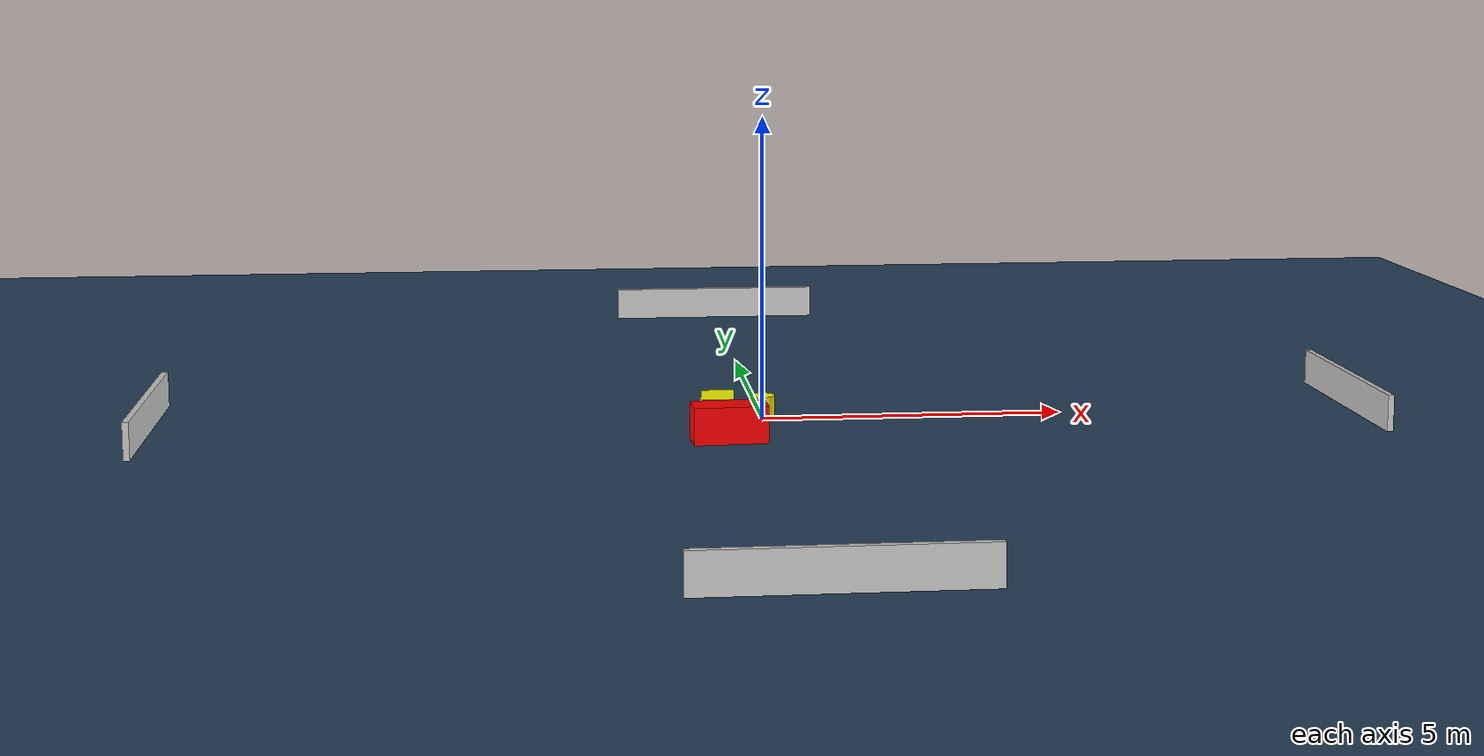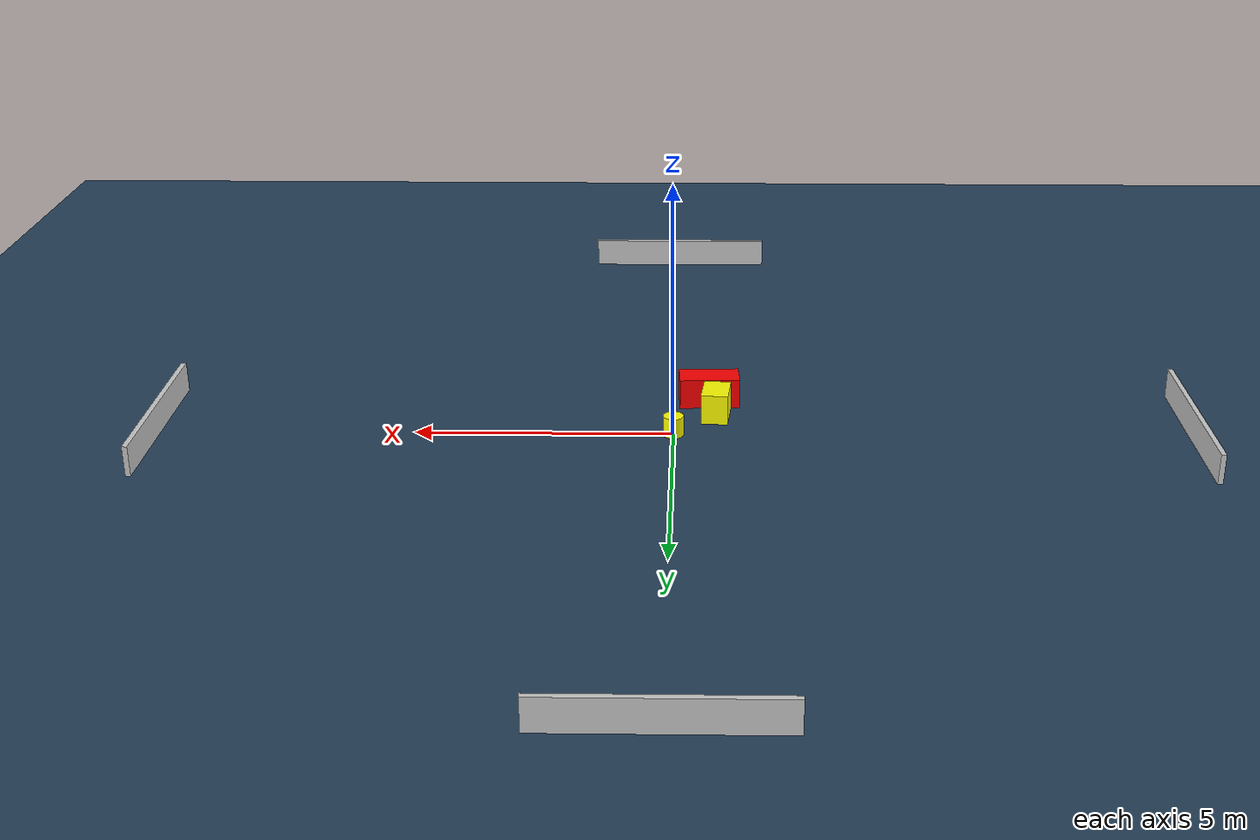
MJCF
<?xml version="1.0" ?>
<mujoco model="generated_environment">
  <option timestep="0.01" integrator="RK4" cone="elliptic"/>
  <default>
    <geom density="1"/>
  </default>
  <asset>
    <texture builtin="gradient" height="3072" name="skybox" rgb1="0.3 0.5 0.7" rgb2="0 0 0" type="skybox" width="512"/>
    <texture builtin="checker" height="300" name="groundplane" rgb1="0.2 0.3 0.4" rgb2="0.1 0.2 0.3" type="2d" width="300"/>
    <material name="groundplane" reflectance="0.2" texrepeat="5 5" texture="groundplane"/>
  </asset>
  <worldbody>
    <light dir="0 0 -1" directional="true" pos="0 0 1.5"/>
    <geom condim="3" friction="0.5 0.005 0.001" material="groundplane" name="floor" pos="0 0 0" size="0 0 0.05" type="plane"/>
    <body name="walls">
      <geom name="wall_1" condim="4" pos="-10.0 0.0 0.3" rgba="0.800000011920929 0.800000011920929 0.800000011920929 1.0" size="0.05 2.0 0.3" type="box"/>
      <geom name="wall_2" condim="4" pos="10.0 0.0 0.3" rgba="0.800000011920929 0.800000011920929 0.800000011920929 1.0" size="0.05 2.0 0.3" type="box"/>
      <geom name="wall_3" condim="4" pos="0.0 -10.0 0.3" rgba="0.800000011920929 0.800000011920929 0.800000011920929 1.0" size="2.0 0.05 0.3" type="box"/>
      <geom name="wall_4" condim="4" pos="0.0 10.0 0.3" rgba="0.800000011920929 0.800000011920929 0.800000011920929 1.0" size="2.0 0.05 0.3" type="box"/>
    </body>
    <body name="robot">
      <joint name="joint_x" type="slide" pos="0 0 0" axis="1 0 0"/>
      <joint name="joint_y" type="slide" pos="0 0 0" axis="0 1 0"/>
      <geom name="robot" type="cylinder" pos="0.0 0.0 0.2" size="0.2 0.2 0.0" mass="5.0" friction="1.0 0.005 0.0001" condim="4" rgba="1.0 1.0 0.0 1.0"/>
    </body>
    <body name="obstacle_1_movable">
      <geom name="obstacle_1_movable" condim="4" pos="-0.8270487674045645 -0.8544186602755759 0.3" euler="0 0 354.5356186155858" friction="0.0 0.005 0.001" rgba="1.0 1.0 0.0 1.0" size="0.26399571120543314 0.3693074315569744 0.3" type="box" mass="0.1"/>
      <joint type="free"/>
    </body>
    <body name="obstacle_2_static">
      <geom name="obstacle_2_static" condim="4" pos="-0.6940495399783152 -1.5646552253080264 0.3" euler="0 0 92.96340620990934" friction="0.0 0.005 0.001" rgba="1.0 0.0 0.0 1.0" size="0.290988919437431 0.5968671847274067 0.3" type="box"/>
    </body>
  </worldbody>
  <actuator>
    <motor name="actuator_x" joint="joint_x" gear="1" ctrlrange="-1 1"/>
    <motor name="actuator_y" joint="joint_y" gear="1" ctrlrange="-1 1"/>
  </actuator>
</mujoco>
